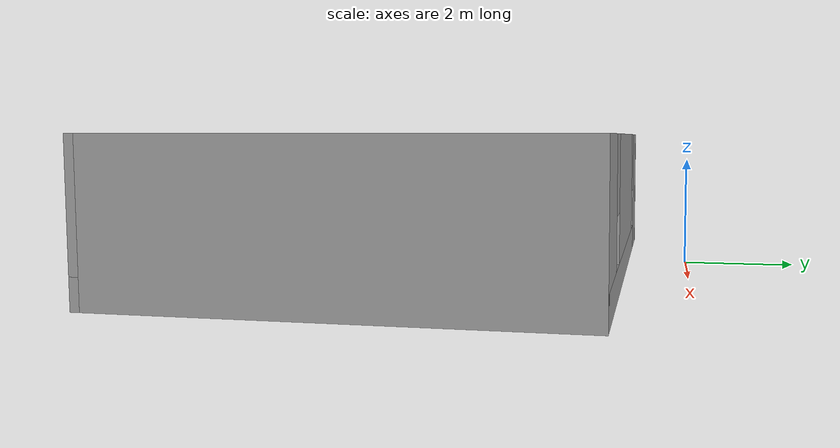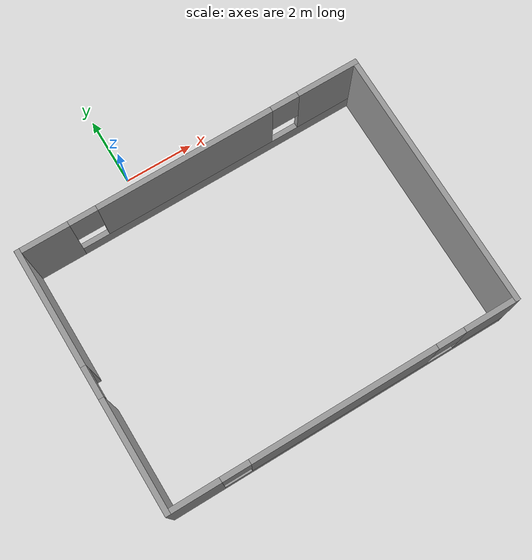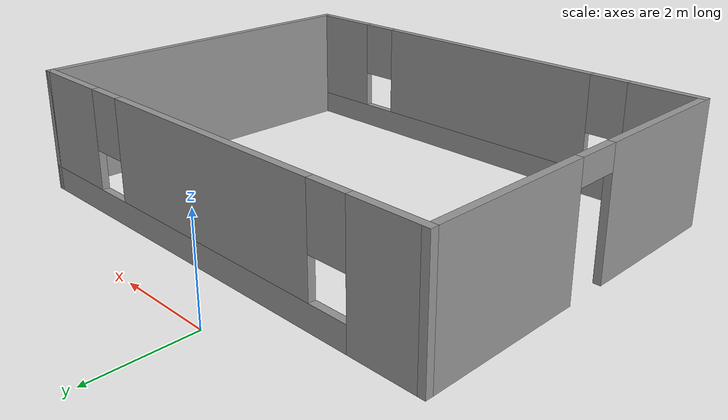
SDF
<?xml version='1.0'?>
<sdf version='1.7'>
  <model name='house'>
    <pose>1.515 -4.2975 0 0 -0 0</pose>
    <link name='Wall_0'>
      <pose>0 3.1275 0 0 -0 0</pose>
      <visual name='Wall_0_Visual_0'>
        <pose>-4.25152 0 1.25 0 -0 0</pose>
        <geometry>
          <box>
            <size>1.49696 0.15 2.5</size>
          </box>
        </geometry>
        <material>
          <script>
            <uri>file://media/materials/scripts/gazebo.material</uri>
            <name>Gazebo/Grey</name>
          </script>
          <ambient>1 1 1 1</ambient>
        </material>
        <meta>
          <layer>0</layer>
        </meta>
      </visual>
      <collision name='Wall_0_Collision_0'>
        <geometry>
          <box>
            <size>1.49696 0.15 2.5</size>
          </box>
        </geometry>
        <pose>-4.25152 0 1.25 0 -0 0</pose>
      </collision>
      <visual name='Wall_0_Visual_1'>
        <pose>0.748478 0 0.25 0 -0 0</pose>
        <geometry>
          <box>
            <size>8.50304 0.15 0.5</size>
          </box>
        </geometry>
        <material>
          <script>
            <uri>file://media/materials/scripts/gazebo.material</uri>
            <name>Gazebo/Grey</name>
          </script>
          <ambient>1 1 1 1</ambient>
        </material>
        <meta>
          <layer>0</layer>
        </meta>
      </visual>
      <collision name='Wall_0_Collision_1'>
        <geometry>
          <box>
            <size>8.50304 0.15 0.5</size>
          </box>
        </geometry>
        <pose>0.748478 0 0.25 0 -0 0</pose>
      </collision>
      <visual name='Wall_0_Visual_2'>
        <pose>-0.152546 0 1.5 0 -0 0</pose>
        <geometry>
          <box>
            <size>5.101 0.15 2</size>
          </box>
        </geometry>
        <material>
          <script>
            <uri>file://media/materials/scripts/gazebo.material</uri>
            <name>Gazebo/Grey</name>
          </script>
          <ambient>1 1 1 1</ambient>
        </material>
        <meta>
          <layer>0</layer>
        </meta>
      </visual>
      <collision name='Wall_0_Collision_2'>
        <geometry>
          <box>
            <size>5.101 0.15 2</size>
          </box>
        </geometry>
        <pose>-0.152546 0 1.5 0 -0 0</pose>
      </collision>
      <visual name='Wall_0_Visual_3'>
        <pose>4.09898 0 1.5 0 -0 0</pose>
        <geometry>
          <box>
            <size>1.80205 0.15 2</size>
          </box>
        </geometry>
        <material>
          <script>
            <uri>file://media/materials/scripts/gazebo.material</uri>
            <name>Gazebo/Grey</name>
          </script>
          <ambient>1 1 1 1</ambient>
        </material>
        <meta>
          <layer>0</layer>
        </meta>
      </visual>
      <collision name='Wall_0_Collision_3'>
        <geometry>
          <box>
            <size>1.80205 0.15 2</size>
          </box>
        </geometry>
        <pose>4.09898 0 1.5 0 -0 0</pose>
      </collision>
      <visual name='Wall_0_Visual_4'>
        <pose>-3.10304 0 1.9 0 -0 0</pose>
        <geometry>
          <box>
            <size>0.8 0.15 1.2</size>
          </box>
        </geometry>
        <material>
          <script>
            <uri>file://media/materials/scripts/gazebo.material</uri>
            <name>Gazebo/Grey</name>
          </script>
          <ambient>1 1 1 1</ambient>
        </material>
        <meta>
          <layer>0</layer>
        </meta>
      </visual>
      <collision name='Wall_0_Collision_4'>
        <geometry>
          <box>
            <size>0.8 0.15 1.2</size>
          </box>
        </geometry>
        <pose>-3.10304 0 1.9 0 -0 0</pose>
      </collision>
      <visual name='Wall_0_Visual_5'>
        <pose>2.79795 0 1.9 0 -0 0</pose>
        <geometry>
          <box>
            <size>0.8 0.15 1.2</size>
          </box>
        </geometry>
        <material>
          <script>
            <uri>file://media/materials/scripts/gazebo.material</uri>
            <name>Gazebo/Grey</name>
          </script>
          <ambient>1 1 1 1</ambient>
        </material>
        <meta>
          <layer>0</layer>
        </meta>
      </visual>
      <collision name='Wall_0_Collision_5'>
        <geometry>
          <box>
            <size>0.8 0.15 1.2</size>
          </box>
        </geometry>
        <pose>2.79795 0 1.9 0 -0 0</pose>
      </collision>
    </link>
    <link name='Wall_1'>
      <collision name='Wall_1_Collision'>
        <geometry>
          <box>
            <size>7.5 0.15 2.5</size>
          </box>
        </geometry>
        <pose>0 0 1.25 0 -0 0</pose>
      </collision>
      <visual name='Wall_1_Visual'>
        <pose>0 0 1.25 0 -0 0</pose>
        <geometry>
          <box>
            <size>7.5 0.15 2.5</size>
          </box>
        </geometry>
        <material>
          <script>
            <uri>file://media/materials/scripts/gazebo.material</uri>
            <name>Gazebo/Grey</name>
          </script>
          <ambient>1 1 1 1</ambient>
        </material>
        <meta>
          <layer>0</layer>
        </meta>
      </visual>
      <pose>4.925 -0.5475 0 0 -0 -1.5708</pose>
    </link>
    <link name='Wall_3'>
      <pose>-4.925 -0.5475 0 0 -0 -1.5708</pose>
      <visual name='Wall_3_Visual_0'>
        <pose>-2.04882 0 1.25 0 -0 0</pose>
        <geometry>
          <box>
            <size>3.40237 0.15 2.5</size>
          </box>
        </geometry>
        <material>
          <script>
            <uri>file://media/materials/scripts/gazebo.material</uri>
            <name>Gazebo/Grey</name>
          </script>
          <ambient>1 1 1 1</ambient>
        </material>
        <meta>
          <layer>0</layer>
        </meta>
      </visual>
      <collision name='Wall_3_Collision_0'>
        <geometry>
          <box>
            <size>3.40237 0.15 2.5</size>
          </box>
        </geometry>
        <pose>-2.04882 0 1.25 0 -0 0</pose>
      </collision>
      <visual name='Wall_3_Visual_1'>
        <pose>2.15118 0 1.25 0 -0 0</pose>
        <geometry>
          <box>
            <size>3.19763 0.15 2.5</size>
          </box>
        </geometry>
        <material>
          <script>
            <uri>file://media/materials/scripts/gazebo.material</uri>
            <name>Gazebo/Grey</name>
          </script>
          <ambient>1 1 1 1</ambient>
        </material>
        <meta>
          <layer>0</layer>
        </meta>
      </visual>
      <collision name='Wall_3_Collision_1'>
        <geometry>
          <box>
            <size>3.19763 0.15 2.5</size>
          </box>
        </geometry>
        <pose>2.15118 0 1.25 0 -0 0</pose>
      </collision>
      <visual name='Wall_3_Visual_2'>
        <pose>0.102367 0 2.25 0 -0 0</pose>
        <geometry>
          <box>
            <size>0.9 0.15 0.5</size>
          </box>
        </geometry>
        <material>
          <script>
            <uri>file://media/materials/scripts/gazebo.material</uri>
            <name>Gazebo/Grey</name>
          </script>
          <ambient>1 1 1 1</ambient>
        </material>
        <meta>
          <layer>0</layer>
        </meta>
      </visual>
      <collision name='Wall_3_Collision_2'>
        <geometry>
          <box>
            <size>0.9 0.15 0.5</size>
          </box>
        </geometry>
        <pose>0.102367 0 2.25 0 -0 0</pose>
      </collision>
    </link>
    <link name='Wall_4'>
      <pose>0 -4.2225 0 0 -0 0</pose>
      <visual name='Wall_4_Visual_0'>
        <pose>-4.23631 0 1.25 0 -0 0</pose>
        <geometry>
          <box>
            <size>1.52737 0.15 2.5</size>
          </box>
        </geometry>
        <material>
          <script>
            <uri>file://media/materials/scripts/gazebo.material</uri>
            <name>Gazebo/Grey</name>
          </script>
          <ambient>1 1 1 1</ambient>
        </material>
        <meta>
          <layer>0</layer>
        </meta>
      </visual>
      <collision name='Wall_4_Collision_0'>
        <geometry>
          <box>
            <size>1.52737 0.15 2.5</size>
          </box>
        </geometry>
        <pose>-4.23631 0 1.25 0 -0 0</pose>
      </collision>
      <visual name='Wall_4_Visual_1'>
        <pose>0.763687 0 0.25 0 -0 0</pose>
        <geometry>
          <box>
            <size>8.47263 0.15 0.5</size>
          </box>
        </geometry>
        <material>
          <script>
            <uri>file://media/materials/scripts/gazebo.material</uri>
            <name>Gazebo/Grey</name>
          </script>
          <ambient>1 1 1 1</ambient>
        </material>
        <meta>
          <layer>0</layer>
        </meta>
      </visual>
      <collision name='Wall_4_Collision_1'>
        <geometry>
          <box>
            <size>8.47263 0.15 0.5</size>
          </box>
        </geometry>
        <pose>0.763687 0 0.25 0 -0 0</pose>
      </collision>
      <visual name='Wall_4_Visual_2'>
        <pose>-0.030876 0 1.5 0 -0 0</pose>
        <geometry>
          <box>
            <size>5.2835 0.15 2</size>
          </box>
        </geometry>
        <material>
          <script>
            <uri>file://media/materials/scripts/gazebo.material</uri>
            <name>Gazebo/Grey</name>
          </script>
          <ambient>1 1 1 1</ambient>
        </material>
        <meta>
          <layer>0</layer>
        </meta>
      </visual>
      <collision name='Wall_4_Collision_2'>
        <geometry>
          <box>
            <size>5.2835 0.15 2</size>
          </box>
        </geometry>
        <pose>-0.030876 0 1.5 0 -0 0</pose>
      </collision>
      <visual name='Wall_4_Visual_3'>
        <pose>4.20544 0 1.5 0 -0 0</pose>
        <geometry>
          <box>
            <size>1.58913 0.15 2</size>
          </box>
        </geometry>
        <material>
          <script>
            <uri>file://media/materials/scripts/gazebo.material</uri>
            <name>Gazebo/Grey</name>
          </script>
          <ambient>1 1 1 1</ambient>
        </material>
        <meta>
          <layer>0</layer>
        </meta>
      </visual>
      <collision name='Wall_4_Collision_3'>
        <geometry>
          <box>
            <size>1.58913 0.15 2</size>
          </box>
        </geometry>
        <pose>4.20544 0 1.5 0 -0 0</pose>
      </collision>
      <visual name='Wall_4_Visual_4'>
        <pose>-3.07263 0 1.9 0 -0 0</pose>
        <geometry>
          <box>
            <size>0.8 0.15 1.2</size>
          </box>
        </geometry>
        <material>
          <script>
            <uri>file://media/materials/scripts/gazebo.material</uri>
            <name>Gazebo/Grey</name>
          </script>
          <ambient>1 1 1 1</ambient>
        </material>
        <meta>
          <layer>0</layer>
        </meta>
      </visual>
      <collision name='Wall_4_Collision_4'>
        <geometry>
          <box>
            <size>0.8 0.15 1.2</size>
          </box>
        </geometry>
        <pose>-3.07263 0 1.9 0 -0 0</pose>
      </collision>
      <visual name='Wall_4_Visual_5'>
        <pose>3.01087 0 1.9 0 -0 0</pose>
        <geometry>
          <box>
            <size>0.8 0.15 1.2</size>
          </box>
        </geometry>
        <material>
          <script>
            <uri>file://media/materials/scripts/gazebo.material</uri>
            <name>Gazebo/Grey</name>
          </script>
          <ambient>1 1 1 1</ambient>
        </material>
        <meta>
          <layer>0</layer>
        </meta>
      </visual>
      <collision name='Wall_4_Collision_5'>
        <geometry>
          <box>
            <size>0.8 0.15 1.2</size>
          </box>
        </geometry>
        <pose>3.01087 0 1.9 0 -0 0</pose>
      </collision>
    </link>
    <static>1</static>
  </model>
</sdf>
